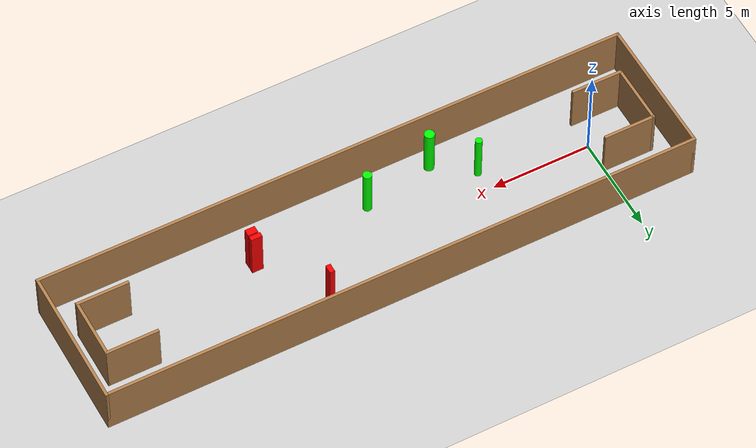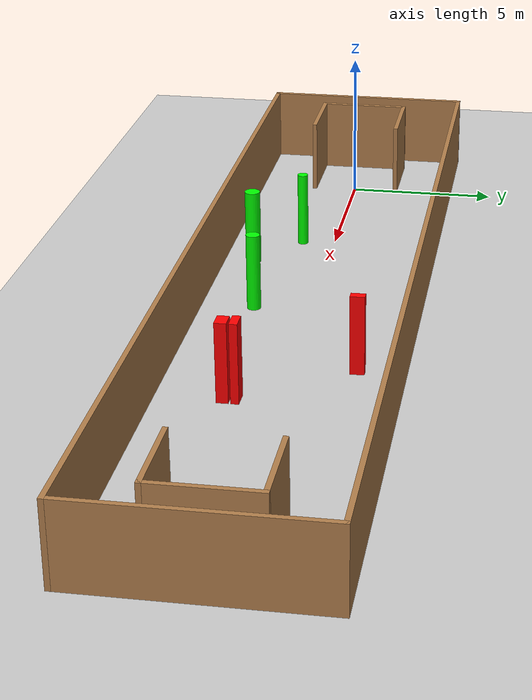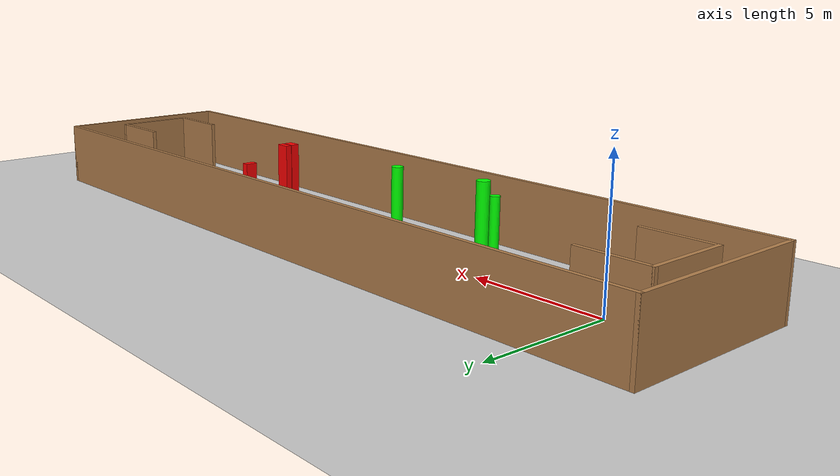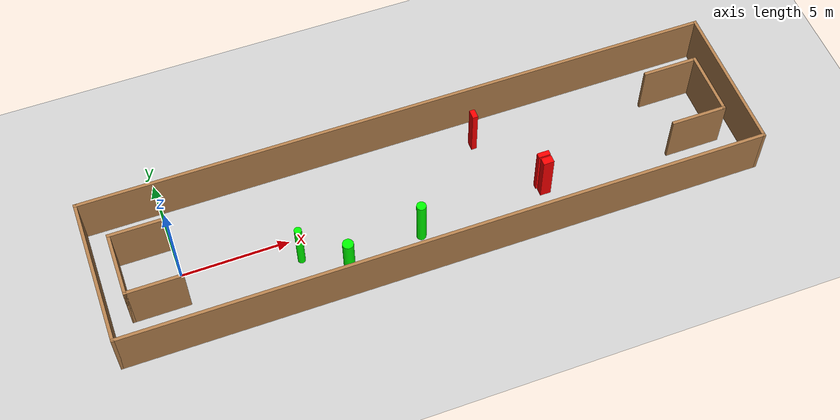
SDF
<sdf version="1.7">
 <world name="default">
  <light name="sun" type="directional">
   <pose>0 0 10 0 -0 0</pose>
   <diffuse>0.8 0.8 0.8 1</diffuse>
   <specular>0.2 0.2 0.2 1</specular>
   <attenuation>
    <range>1000</range>
    <constant>0.9</constant>
    <linear>0.01</linear>
    <quadratic>0.001</quadratic>
   </attenuation>
   <direction>-0.5 0.1 -0.9</direction>
   <spot><inner_angle>0</inner_angle><outer_angle>0</outer_angle><falloff>0</falloff></spot>
  </light>
  <model name="ground_plane">
   <static>1</static>
   <link name="link">
    <collision name="collision">
     <geometry><plane><normal>0 0 1</normal><size>100 100</size></plane></geometry>
     <surface>
      <contact><collide_bitmask>65535</collide_bitmask></contact>
      <friction><ode><mu>100</mu><mu2>50</mu2></ode></friction>
     </surface>
    </collision>
    <visual name="visual">
     <cast_shadows>0</cast_shadows>
     <geometry><plane><normal>0 0 1</normal><size>100 100</size></plane></geometry>
     <material>
      <script><uri>file://media/materials/scripts/gazebo.material</uri><name>Gazebo/Grey</name></script>
     </material>
    </visual>
   </link>
  </model>
  <gravity>0 0 -9.8</gravity>
  <magnetic_field>6e-06 2.3e-05 -4.2e-05</magnetic_field>
  <atmosphere type="adiabatic"/>
  <physics type="ode">
   <max_step_size>0.001</max_step_size>
   <real_time_factor>1</real_time_factor>
   <real_time_update_rate>1000</real_time_update_rate>
  </physics>
  <scene><ambient>0.4 0.4 0.4 1</ambient><background>0.7 0.7 0.7 1</background><shadows>1</shadows></scene>
  <spherical_coordinates>
   <surface_model>EARTH_WGS84</surface_model>
   <latitude_deg>0</latitude_deg>
   <longitude_deg>0</longitude_deg>
   <elevation>0</elevation>
   <heading_deg>0</heading_deg>
  </spherical_coordinates>
  <model name="my_base_walls">
   <link name="Wall_0">
    <collision name="Wall_0_Collision">
     <geometry><box><size>7.15 0.15 2.5</size></box></geometry>
     <pose>0 0 1.25 0 -0 0</pose>
    </collision>
    <visual name="Wall_0_Visual">
     <pose>0 0 1.25 0 -0 0</pose>
     <geometry><box><size>7.15 0.15 2.5</size></box></geometry>
     <material>
      <script><uri>file://media/materials/scripts/gazebo.material</uri><name>Gazebo/Wood</name></script>
      <ambient>1 1 1 1</ambient>
     </material>
     <meta><layer>0</layer></meta>
    </visual>
    <pose>-15 0 0 0 -0 1.5708</pose>
   </link>
   <link name="Wall_10">
    <collision name="Wall_10_Collision">
     <geometry><box><size>2.65 0.15 2.5</size></box></geometry>
     <pose>0 0 1.25 0 -0 0</pose>
    </collision>
    <visual name="Wall_10_Visual">
     <pose>0 0 1.25 0 -0 0</pose>
     <geometry><box><size>2.65 0.15 2.5</size></box></geometry>
     <material>
      <script><uri>file://media/materials/scripts/gazebo.material</uri><name>Gazebo/Wood</name></script>
      <ambient>1 1 1 1</ambient>
     </material>
     <meta><layer>0</layer></meta>
    </visual>
    <pose>-12.75 -1.5 0 0 -0 0</pose>
   </link>
   <link name="Wall_12">
    <collision name="Wall_12_Collision">
     <geometry><box><size>2.65 0.15 2.5</size></box></geometry>
     <pose>0 0 1.25 0 -0 0</pose>
    </collision>
    <visual name="Wall_12_Visual">
     <pose>0 0 1.25 0 -0 0</pose>
     <geometry><box><size>2.65 0.15 2.5</size></box></geometry>
     <material>
      <script><uri>file://media/materials/scripts/gazebo.material</uri><name>Gazebo/Wood</name></script>
      <ambient>1 1 1 1</ambient>
     </material>
     <meta><layer>0</layer></meta>
    </visual>
    <pose>-12.75 1.5 0 0 -0 0</pose>
   </link>
   <link name="Wall_14">
    <collision name="Wall_14_Collision">
     <geometry><box><size>3.15 0.15 2.5</size></box></geometry>
     <pose>0 0 1.25 0 -0 0</pose>
    </collision>
    <visual name="Wall_14_Visual">
     <pose>0 0 1.25 0 -0 0</pose>
     <geometry><box><size>3.15 0.15 2.5</size></box></geometry>
     <material>
      <script><uri>file://media/materials/scripts/gazebo.material</uri><name>Gazebo/Wood</name></script>
      <ambient>1 1 1 1</ambient>
     </material>
     <meta><layer>0</layer></meta>
    </visual>
    <pose>14 0 0 0 -0 -1.5708</pose>
   </link>
   <link name="Wall_15">
    <collision name="Wall_15_Collision">
     <geometry><box><size>2.65 0.15 2.5</size></box></geometry>
     <pose>0 0 1.25 0 -0 0</pose>
    </collision>
    <visual name="Wall_15_Visual">
     <pose>0 0 1.25 0 -0 0</pose>
     <geometry><box><size>2.65 0.15 2.5</size></box></geometry>
     <material>
      <script><uri>file://media/materials/scripts/gazebo.material</uri><name>Gazebo/Wood</name></script>
      <ambient>1 1 1 1</ambient>
     </material>
     <meta><layer>0</layer></meta>
    </visual>
    <pose>12.75 -1.5 0 0 -0 3.14159</pose>
   </link>
   <link name="Wall_17">
    <collision name="Wall_17_Collision">
     <geometry><box><size>2.65 0.15 2.5</size></box></geometry>
     <pose>0 0 1.25 0 -0 0</pose>
    </collision>
    <visual name="Wall_17_Visual">
     <pose>0 0 1.25 0 -0 0</pose>
     <geometry><box><size>2.65 0.15 2.5</size></box></geometry>
     <material>
      <script><uri>file://media/materials/scripts/gazebo.material</uri><name>Gazebo/Wood</name></script>
      <ambient>1 1 1 1</ambient>
     </material>
     <meta><layer>0</layer></meta>
    </visual>
    <pose>12.75 1.5 0 0 -0 3.14159</pose>
   </link>
   <link name="Wall_2">
    <collision name="Wall_2_Collision">
     <geometry><box><size>30.15 0.15 2.5</size></box></geometry>
     <pose>0 0 1.25 0 -0 0</pose>
    </collision>
    <visual name="Wall_2_Visual">
     <pose>0 0 1.25 0 -0 0</pose>
     <geometry><box><size>30.15 0.15 2.5</size></box></geometry>
     <material>
      <script><uri>file://media/materials/scripts/gazebo.material</uri><name>Gazebo/Wood</name></script>
      <ambient>1 1 1 1</ambient>
     </material>
     <meta><layer>0</layer></meta>
    </visual>
    <pose>-0 -3.5 0 0 -0 0</pose>
   </link>
   <link name="Wall_4">
    <collision name="Wall_4_Collision">
     <geometry><box><size>30.15 0.15 2.5</size></box></geometry>
     <pose>0 0 1.25 0 -0 0</pose>
    </collision>
    <visual name="Wall_4_Visual">
     <pose>0 0 1.25 0 -0 0</pose>
     <geometry><box><size>30.15 0.15 2.5</size></box></geometry>
     <material>
      <script><uri>file://media/materials/scripts/gazebo.material</uri><name>Gazebo/Wood</name></script>
      <ambient>1 1 1 1</ambient>
     </material>
     <meta><layer>0</layer></meta>
    </visual>
    <pose>-0 3.5 0 0 -0 0</pose>
   </link>
   <link name="Wall_6">
    <collision name="Wall_6_Collision">
     <geometry><box><size>7.15 0.15 2.5</size></box></geometry>
     <pose>0 0 1.25 0 -0 0</pose>
    </collision>
    <visual name="Wall_6_Visual">
     <pose>0 0 1.25 0 -0 0</pose>
     <geometry><box><size>7.15 0.15 2.5</size></box></geometry>
     <material>
      <script><uri>file://media/materials/scripts/gazebo.material</uri><name>Gazebo/Wood</name></script>
      <ambient>1 1 1 1</ambient>
     </material>
     <meta><layer>0</layer></meta>
    </visual>
    <pose>15 0 0 0 -0 -1.5708</pose>
   </link>
   <link name="Wall_9">
    <collision name="Wall_9_Collision">
     <geometry><box><size>3.15 0.15 2.5</size></box></geometry>
     <pose>0 0 1.25 0 -0 0</pose>
    </collision>
    <visual name="Wall_9_Visual">
     <pose>0 0 1.25 0 -0 0</pose>
     <geometry><box><size>3.15 0.15 2.5</size></box></geometry>
     <material>
      <script><uri>file://media/materials/scripts/gazebo.material</uri><name>Gazebo/Wood</name></script>
      <ambient>1 1 1 1</ambient>
     </material>
     <meta><layer>0</layer></meta>
    </visual>
    <pose>-14 0 0 0 -0 -1.5708</pose>
   </link>
   <static>1</static>
   <pose>11.5 0 0 0 -0 0</pose>
  </model>
  <model name="cylinder1">
   <static>1</static>
   <link name="link">
    <inertial>
     <mass>1</mass>
     <inertia><ixx>0.5</ixx><ixy>0</ixy><ixz>0</ixz><iyy>0.5</iyy><iyz>0</iyz><izz>1</izz></inertia>
    </inertial>
    <collision name="collision">
     <geometry><cylinder><radius>0.2533789486603767</radius><length>2.5</length></cylinder></geometry>
    </collision>
    <visual name="visual">
     <geometry><cylinder><radius>0.2533789486603767</radius><length>2.5</length></cylinder></geometry>
     <material>
      <ambient>0 1 0 1</ambient>
      <diffuse>0 1 0 1</diffuse>
      <specular>0.1 0.1 0.1 1</specular>
      <emissive>0 0 0 0</emissive>
     </material>
    </visual>
   </link>
   <pose>7.071767418017229 -2.461907112561066 1.25 0 0 0</pose>
  </model>
  <model name="cylinder2">
   <static>1</static>
   <link name="link">
    <inertial>
     <mass>1</mass>
     <inertia><ixx>0.5</ixx><ixy>0</ixy><ixz>0</ixz><iyy>0.5</iyy><iyz>0</iyz><izz>1</izz></inertia>
    </inertial>
    <collision name="collision">
     <geometry><cylinder><radius>0.22118400898778026</radius><length>2.5</length></cylinder></geometry>
    </collision>
    <visual name="visual">
     <geometry><cylinder><radius>0.22118400898778026</radius><length>2.5</length></cylinder></geometry>
     <material>
      <ambient>0 1 0 1</ambient>
      <diffuse>0 1 0 1</diffuse>
      <specular>0.1 0.1 0.1 1</specular>
      <emissive>0 0 0 0</emissive>
     </material>
    </visual>
   </link>
   <pose>10.692168395659493 -1.7381056004293352 1.25 0 0 0</pose>
  </model>
  <model name="cylinder3">
   <static>1</static>
   <link name="link">
    <inertial>
     <mass>1</mass>
     <inertia><ixx>0.5</ixx><ixy>0</ixy><ixz>0</ixz><iyy>0.5</iyy><iyz>0</iyz><izz>1</izz></inertia>
    </inertial>
    <collision name="collision">
     <geometry><cylinder><radius>0.1734293124469809</radius><length>2.5</length></cylinder></geometry>
    </collision>
    <visual name="visual">
     <geometry><cylinder><radius>0.1734293124469809</radius><length>2.5</length></cylinder></geometry>
     <material>
      <ambient>0 1 0 1</ambient>
      <diffuse>0 1 0 1</diffuse>
      <specular>0.1 0.1 0.1 1</specular>
      <emissive>0 0 0 0</emissive>
     </material>
    </visual>
   </link>
   <pose>5.255420982144178 -1.071703870954368 1.25 0 0 0</pose>
  </model>
  <model name="box1">
   <static>1</static>
   <link name="link">
    <inertial>
     <mass>1</mass>
     <inertia><ixx>0.083</ixx><ixy>0</ixy><ixz>0</ixz><iyy>0.083</iyy><iyz>0</iyz><izz>0.083</izz></inertia>
    </inertial>
    <collision name="collision">
     <geometry><box><size>0.2526904492299458 0.44184086964281105 2.5</size></box></geometry>
    </collision>
    <visual name="visual">
     <geometry><box><size>0.2526904492299458 0.44184086964281105 2.5</size></box></geometry>
     <material>
      <ambient>1 0 0 1</ambient>
      <diffuse>1 0 0 1</diffuse>
      <specular>0.1 0.1 0.1 1</specular>
      <emissive>0 0 0 0</emissive>
     </material>
    </visual>
    <sensor name="my_contact" type="contact">
     <contact><collision>box_collision</collision><topic>__default_topic__</topic></contact>
    </sensor>
   </link>
   <pose>14.643345580594858 2.111889631960352 1.25 0 0 0</pose>
  </model>
  <model name="box2">
   <static>1</static>
   <link name="link">
    <inertial>
     <mass>1</mass>
     <inertia><ixx>0.083</ixx><ixy>0</ixy><ixz>0</ixz><iyy>0.083</iyy><iyz>0</iyz><izz>0.083</izz></inertia>
    </inertial>
    <collision name="collision">
     <geometry><box><size>0.5672562081805456 0.24288865427879858 2.5</size></box></geometry>
    </collision>
    <visual name="visual">
     <geometry><box><size>0.5672562081805456 0.24288865427879858 2.5</size></box></geometry>
     <material>
      <ambient>1 0 0 1</ambient>
      <diffuse>1 0 0 1</diffuse>
      <specular>0.1 0.1 0.1 1</specular>
      <emissive>0 0 0 0</emissive>
     </material>
    </visual>
    <sensor name="my_contact" type="contact">
     <contact><collision>box_collision</collision><topic>__default_topic__</topic></contact>
    </sensor>
   </link>
   <pose>16.776676720075624 -1.0471046382708464 1.25 0 0 0</pose>
  </model>
  <model name="box3">
   <static>1</static>
   <link name="link">
    <inertial>
     <mass>1</mass>
     <inertia><ixx>0.083</ixx><ixy>0</ixy><ixz>0</ixz><iyy>0.083</iyy><iyz>0</iyz><izz>0.083</izz></inertia>
    </inertial>
    <collision name="collision">
     <geometry><box><size>0.5034437631422506 0.3568060475884666 2.5</size></box></geometry>
    </collision>
    <visual name="visual">
     <geometry><box><size>0.5034437631422506 0.3568060475884666 2.5</size></box></geometry>
     <material>
      <ambient>1 0 0 1</ambient>
      <diffuse>1 0 0 1</diffuse>
      <specular>0.1 0.1 0.1 1</specular>
      <emissive>0 0 0 0</emissive>
     </material>
    </visual>
    <sensor name="my_contact" type="contact">
     <contact><collision>box_collision</collision><topic>__default_topic__</topic></contact>
    </sensor>
   </link>
   <pose>16.806950785703073 -1.4101327118837892 1.25 0 0 0</pose>
  </model>
 </world>
</sdf>
